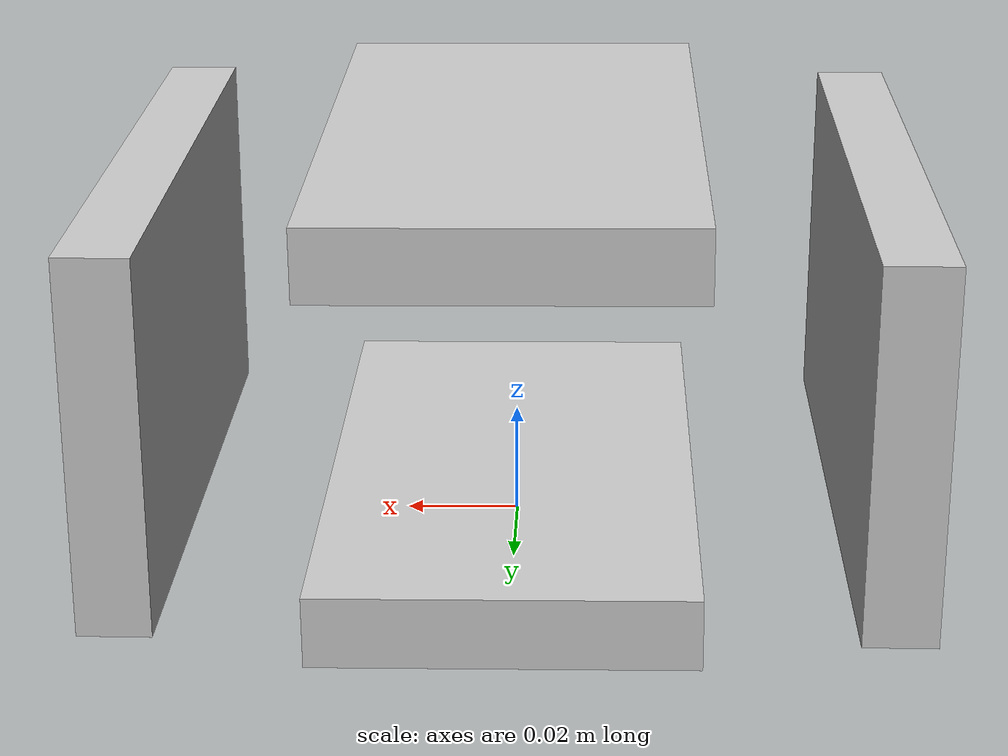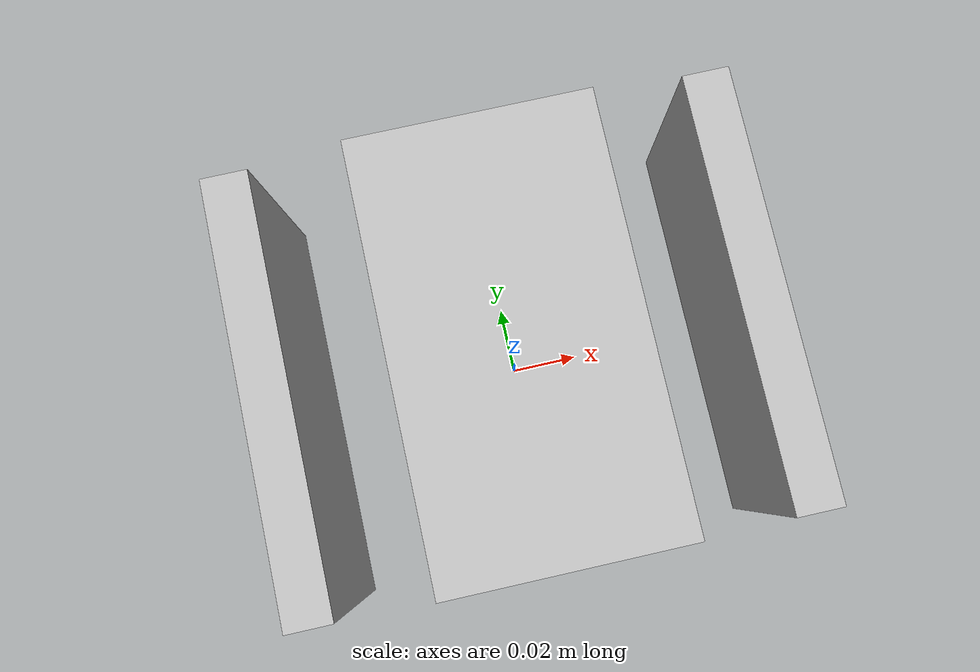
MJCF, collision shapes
<mujoco model="white_storage_box">
  <asset>
    <texture file="martin_novak_wood_table.png" name="tex-white_storage_box" type="2d" />
    <material name="white_storage_box" reflectance="0.5" texrepeat="1 1" texture="tex-white_storage_box" texuniform="false" />
    <!-- scale 的 z 从 0.01 改为 0.005 -->
    <mesh file="visual/box_vis.msh" name="white_storage_box_vis" scale="0.01 0.01 0.005" />
  </asset>

  <worldbody>
    <body>
      <body name="object">

        <!-- site：z pos 和 size.z 均 ×0.5 -->
        <site type="box" pos="0.00000 -0.00000 0.07125" quat="1 0 0 0" size="0.06425 0.05826 0.00061" group="0" rgba="0.8 0.8 0.0 0" name="top_side" />
        <site type="box" pos="0.00000 0.00000 0.00234" quat="1 0 0 0" size="0.06425 0.05826 0.00108" group="0" rgba="0.8 0.8 0.0 0" name="bottom_side" />
        <site type="box" pos="0.06799 0.00000 0.03587" quat="1.00000 -0.00000 0.00123 -0.00000" size="0.00216 0.05826 0.03213" group="0" rgba="0.8 0.8 0.0 0" name="right_side" />
        <site type="box" pos="-0.06723 0.00000 0.03587" quat="1.00000 -0.00000 0.00123 -0.00000" size="0.00216 0.05826 0.03213" group="0" rgba="0.8 0.8 0.0 0" name="left_side" />

        <!-- 视觉 mesh -->
        <geom
          type="mesh"
          mesh="white_storage_box_vis"
          material="white_storage_box"
          contype="0" conaffinity="0"
          group="1"
          solimp="0.998 0.998 0.001" solref="0.001 1"
          density="100" friction="0.95 0.3 0.1"
        />

        <!-- geom：z pos 和 size.z 均 ×0.5 -->
        <geom solimp="0.998 0.998 0.001" solref="0.001 1"
              density="100" friction="0.95 0.3 0.1"
              type="box" pos="0.06420 -0.00000 0.03569"
              quat="0.00000 0.00000 1.00000 0.00000"
              size="0.00629 0.05830 0.03275"
              group="0" rgba="0.8 0.8 0.8 0.3" />

        <geom solimp="0.998 0.998 0.001" solref="0.001 1"
              density="100" friction="0.95 0.3 0.1"
              type="box" pos="0.00072 0.00000 0.06761"
              quat="0.70429 -0.00000 0.70991 0.00000"
              size="0.00629 0.05830 0.03275"
              group="0" rgba="0.8 0.8 0.8 0.3" />

        <geom solimp="0.998 0.998 0.001" solref="0.001 1"
              density="100" friction="0.95 0.3 0.1"
              type="box" pos="0.00072 -0.00000 0.00432"
              quat="0.70429 -0.00000 0.70991 -0.00000"
              size="0.00629 0.05830 0.03275"
              group="0" rgba="0.8 0.8 0.8 0.3" />

        <geom solimp="0.998 0.998 0.001" solref="0.001 1"
              density="100" friction="0.95 0.3 0.1"
              type="box" pos="-0.06392 0.00000 0.03569"
              quat="0.00000 0.00000 1.00000 0.00000"
              size="0.00629 0.05830 0.03275"
              group="0" rgba="0.8 0.8 0.8 0.3" />
      </body>

      <!-- 这些 site 的 z 也等比例缩放 -->
      <site rgba="0 0 0 0" size="0.005" pos="0 0 -0.03" name="bottom_site" />
      <site rgba="0 0 0 0" size="0.005" pos="0 0 0.02" name="top_site" />
      <site rgba="0 0 0 0" size="0.005" pos="0.025 0.025 0" name="horizontal_radius_site" />
    </body>
  </worldbody>
</mujoco>
